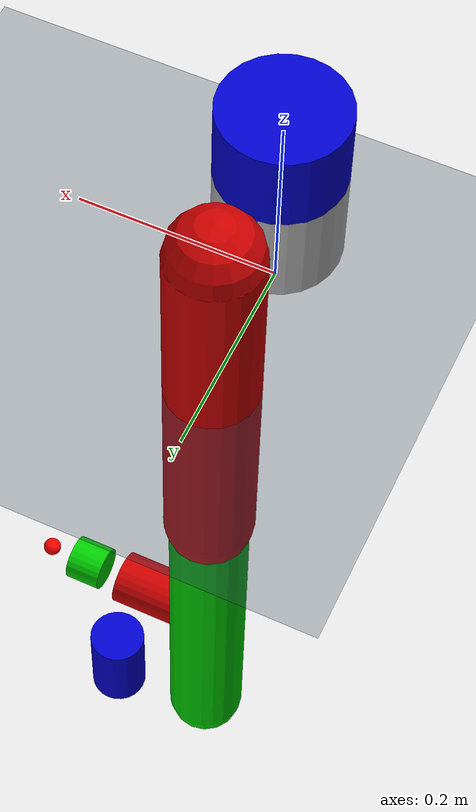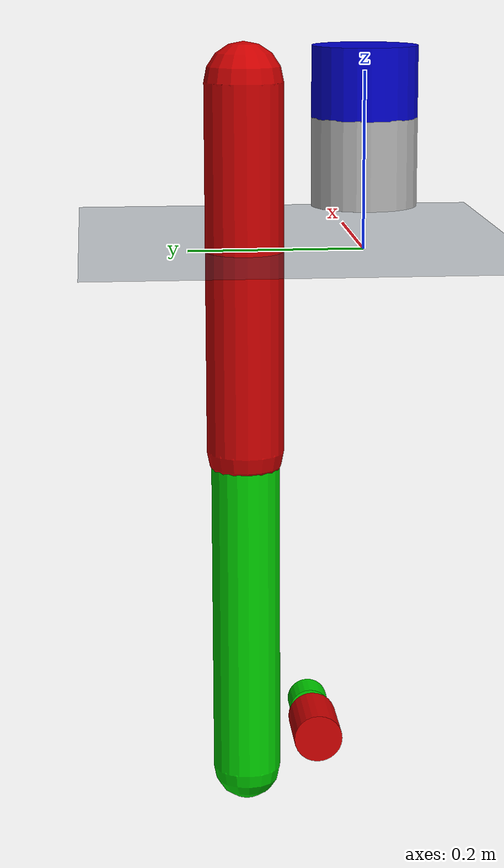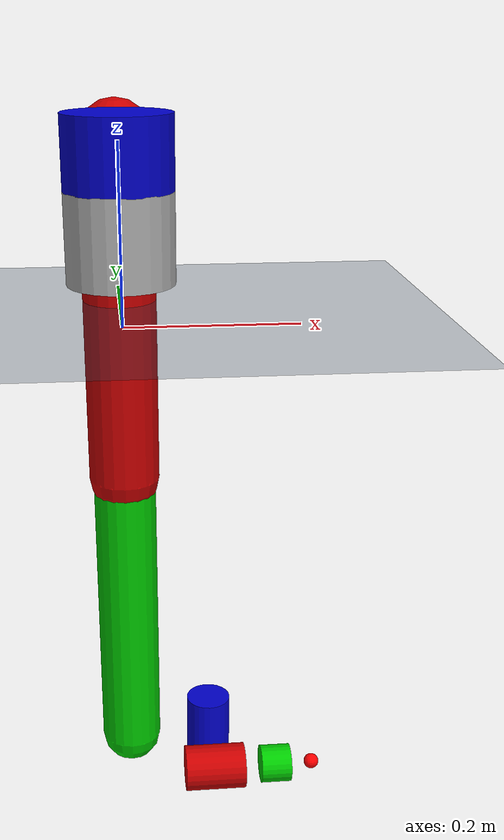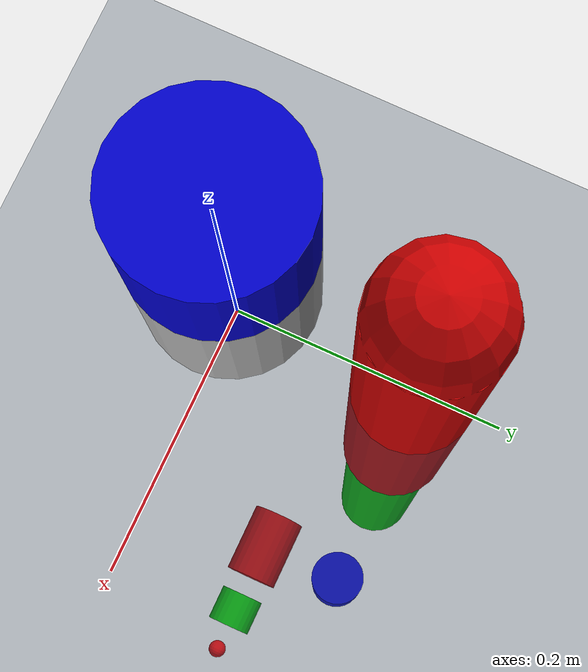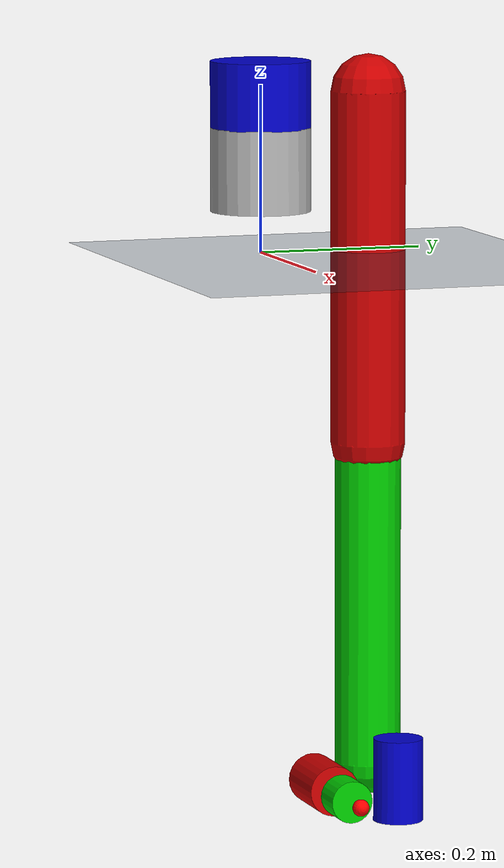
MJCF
<?xml version="1.0" ?>
<mujoco model="ur5">
  <compiler angle="radian" meshdir="meshes"/>

  <option timestep="0.002" gravity="0 0 -9.81">
    <flag warmstart="enable"/>
  </option>

  <visual>
    <quality shadowsize="4096"/>
    <map znear="0.01"/>
  </visual>

  <asset>
    <texture type="skybox" builtin="gradient" rgb1="0.3 0.5 0.7" rgb2="0 0 0" width="512" height="512"/>
    <texture name="texplane" type="2d" builtin="checker" rgb1=".2 .3 .4" rgb2=".1 0.15 0.2" width="512" height="512" mark="cross" markrgb=".8 .8 .8"/>
    <material name="matplane" reflectance="0.3" texture="texplane" texrepeat="1 1" texuniform="true"/>
  </asset>

  <worldbody>
    <light directional="true" diffuse=".8 .8 .8" specular="0.3 0.3 0.3" pos="0 0 5.0" dir="0 0 -1" castshadow="false"/>
    <light directional="true" diffuse=".6 .6 .6" specular="0.2 0.2 0.2" pos="0 0 4" dir="0 0 -1"/>
    <geom name="floor" pos="0 0 0" size="0 0 0.05" type="plane" material="matplane" condim="3"/>

    <!-- Base -->
    <body name="base" pos="0 0 0.1">
      <inertial pos="0 0 0" mass="4.0" diaginertia="0.00443333156 0.00443333156 0.0072"/>
      <geom type="cylinder" size="0.06 0.05" rgba="0.7 0.7 0.7 1" mass="4.0"/>

      <!-- Shoulder Link -->
      <body name="shoulder_link" pos="0 0 0.08916">
        <inertial pos="0 -0.00193 -0.02651" mass="3.7" diaginertia="0.0084 0.0084 0.0064"/>
        <joint name="shoulder_pan_joint" type="hinge" axis="0 0 1" limited="true" range="-6.2832 6.2832" damping="0.5"/>
        <geom type="cylinder" size="0.06 0.04" rgba="0.0 0.0 0.8 1"/>

        <!-- Upper Arm Link -->
        <body name="upper_arm_link" pos="0 0.13585 0" quat="0.707107 0 0.707107 0">
          <inertial pos="0.2125 0 0.11336" mass="8.393" diaginertia="0.0462 0.0462 0.0021"/>
          <joint name="shoulder_lift_joint" type="hinge" axis="0 0 1" limited="true" range="-6.2832 6.2832" damping="0.5"/>
          <geom type="capsule" fromto="0 0 0 0.425 0 0" size="0.045" rgba="0.8 0.0 0.0 1"/>

          <!-- Forearm Link -->
          <body name="forearm_link" pos="0.425 0 0">
            <inertial pos="0.27232 0 0.0265" mass="2.275" diaginertia="0.0462 0.0462 0.0016"/>
            <joint name="elbow_joint" type="hinge" axis="0 0 1" limited="true" range="-3.1416 3.1416" damping="0.5"/>
            <geom type="capsule" fromto="0 0 0 0.39225 0 0" size="0.04" rgba="0.0 0.8 0.0 1"/>

            <!-- Wrist 1 Link -->
            <body name="wrist_1_link" pos="0.39225 0 0.10915" quat="0.707107 0 -0.707107 0">
              <inertial pos="0 0.01634 -0.03410735" mass="1.219" diaginertia="0.0016 0.0016 0.0009"/>
              <joint name="wrist_1_joint" type="hinge" axis="0 0 1" limited="true" range="-6.2832 6.2832" damping="0.1"/>
              <geom type="cylinder" size="0.03 0.05" rgba="0.0 0.0 0.8 1"/>

              <!-- Wrist 2 Link -->
              <body name="wrist_2_link" pos="0 -0.09456 0" quat="0.707107 0 0.707107 0">
                <inertial pos="0 -0.01634 -0.0018" mass="1.219" diaginertia="0.0016 0.0016 0.0009"/>
                <joint name="wrist_2_joint" type="hinge" axis="0 0 1" limited="true" range="-6.2832 6.2832" damping="0.1"/>
                <geom type="cylinder" size="0.03 0.04" rgba="0.8 0.0 0.0 1"/>

                <!-- Wrist 3 Link -->
                <body name="wrist_3_link" pos="0 0 0.0823">
                  <inertial pos="0 0 -0.001159" mass="0.1879" diaginertia="0.0001 0.0001 0.0001"/>
                  <joint name="wrist_3_joint" type="hinge" axis="0 0 1" limited="true" range="-6.2832 6.2832" damping="0.1"/>
                  <geom type="cylinder" size="0.025 0.02" rgba="0.0 0.8 0.0 1"/>

                  <!-- End Effector -->
                  <site name="ee_site" pos="0 0 0.05" size="0.01" rgba="1 0 0 1"/>
                </body>
              </body>
            </body>
          </body>
        </body>
      </body>
    </body>
  </worldbody>

  <actuator>
    <motor name="shoulder_pan" joint="shoulder_pan_joint" gear="100" ctrllimited="true" ctrlrange="-150 150"/>
    <motor name="shoulder_lift" joint="shoulder_lift_joint" gear="100" ctrllimited="true" ctrlrange="-150 150"/>
    <motor name="elbow" joint="elbow_joint" gear="100" ctrllimited="true" ctrlrange="-150 150"/>
    <motor name="wrist_1" joint="wrist_1_joint" gear="10" ctrllimited="true" ctrlrange="-28 28"/>
    <motor name="wrist_2" joint="wrist_2_joint" gear="10" ctrllimited="true" ctrlrange="-28 28"/>
    <motor name="wrist_3" joint="wrist_3_joint" gear="10" ctrllimited="true" ctrlrange="-28 28"/>
  </actuator>

  <sensor>
    <jointpos name="shoulder_pan_pos" joint="shoulder_pan_joint"/>
    <jointpos name="shoulder_lift_pos" joint="shoulder_lift_joint"/>
    <jointpos name="elbow_pos" joint="elbow_joint"/>
    <jointpos name="wrist_1_pos" joint="wrist_1_joint"/>
    <jointpos name="wrist_2_pos" joint="wrist_2_joint"/>
    <jointpos name="wrist_3_pos" joint="wrist_3_joint"/>

    <jointvel name="shoulder_pan_vel" joint="shoulder_pan_joint"/>
    <jointvel name="shoulder_lift_vel" joint="shoulder_lift_joint"/>
    <jointvel name="elbow_vel" joint="elbow_joint"/>
    <jointvel name="wrist_1_vel" joint="wrist_1_joint"/>
    <jointvel name="wrist_2_vel" joint="wrist_2_joint"/>
    <jointvel name="wrist_3_vel" joint="wrist_3_joint"/>

    <framepos name="ee_pos" objtype="site" objname="ee_site"/>
    <framequat name="ee_quat" objtype="site" objname="ee_site"/>
  </sensor>
</mujoco>
